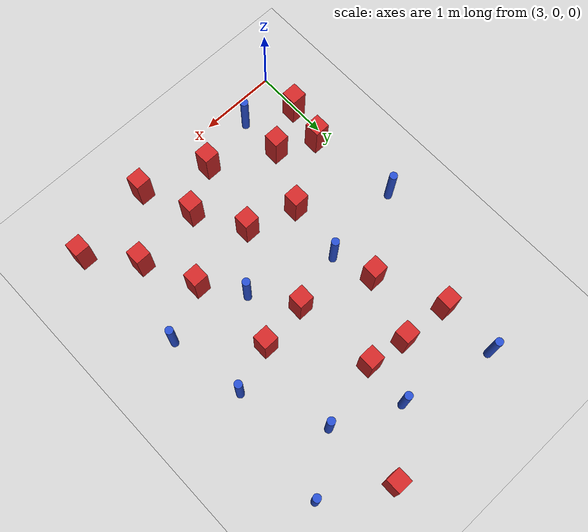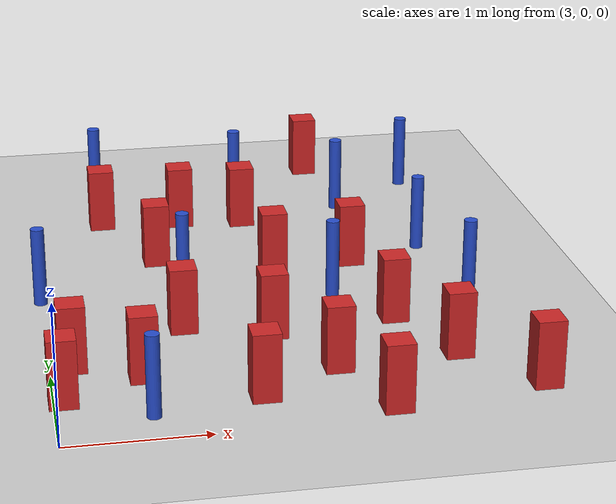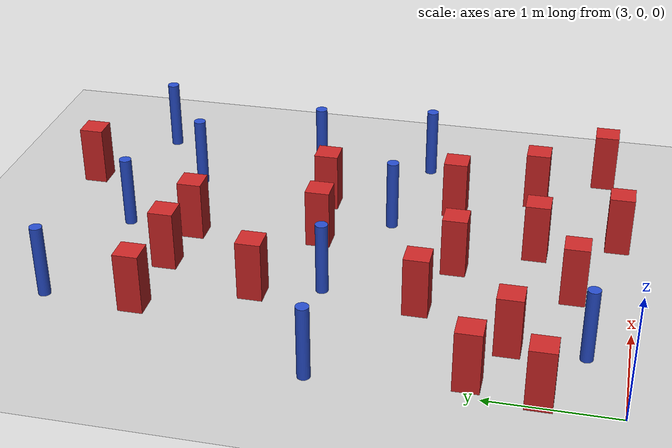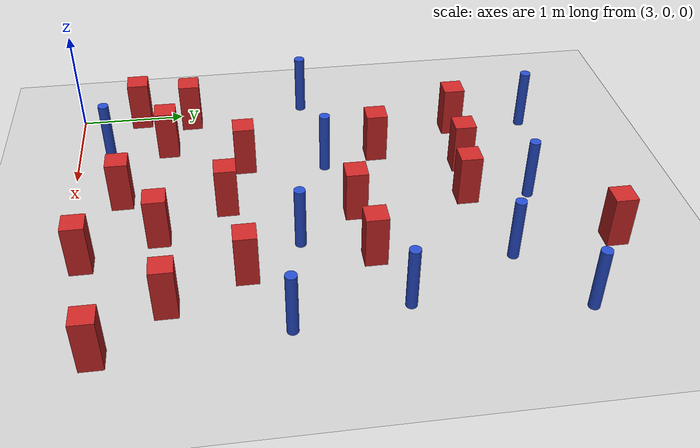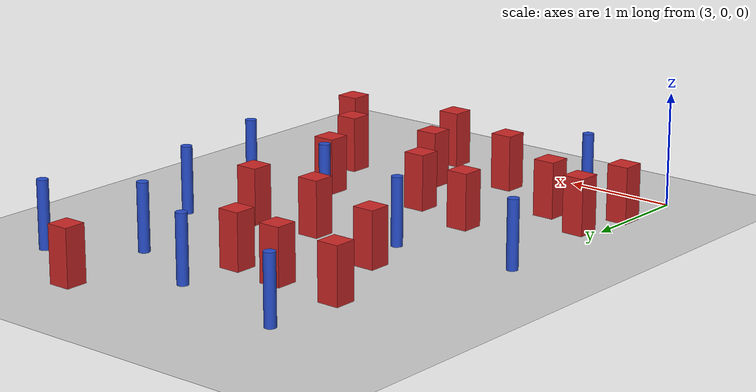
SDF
<sdf version="1.6">
 <world name="default">
  <model name="ground_plane">
   <static>1</static>
   <link name="link">
    <collision name="collision">
     <geometry><plane><normal>0 0 1</normal><size>100 100</size></plane></geometry>
     <surface><friction><ode><mu>100</mu><mu2>50</mu2></ode></friction></surface>
    </collision>
    <visual name="visual">
     <cast_shadows>0</cast_shadows>
     <geometry><plane><normal>0 0 1</normal><size>100 100</size></plane></geometry>
     <material>
      <ambient>1.0 1.0 1.0 1.0</ambient>
      <diffuse>0.8 0.8 0.8 1.0</diffuse>
      <specular>0.01 0.01 0.01 1.000000</specular>
     </material>
    </visual>
   </link>
  </model>
  <model name="pole_obstacle12">
   <static>true</static>
   <pose>6.03670000976 2.83938002078 -3.09024884793e-07 -7.19054271912e-07 -2.11315075135e-07 -1.93935509265e-07</pose>
   <link name="link">
    <pose>0 0 0.3 0 -0 0</pose>
    <inertial>
     <mass>1</mass>
     <inertia><ixx>0.145833</ixx><ixy>0</ixy><ixz>0</ixz><iyy>0.145833</iyy><iyz>0</iyz><izz>0.125</izz></inertia>
    </inertial>
    <collision name="collision">
     <geometry><cylinder><radius>0.05</radius><length>.6</length></cylinder></geometry>
    </collision>
    <visual name="visual">
     <geometry><cylinder><radius>0.05</radius><length>.6</length></cylinder></geometry>
     <material>
      <script><name>Gazebo/Blue</name><uri>file://media/materials/scripts/gazebo.material</uri></script>
     </material>
    </visual>
   </link>
  </model>
  <model name="pole_obstacle22">
   <static>true</static>
   <pose>5.17877000976 2.02896002078 -3.09024884793e-07 -7.19054271912e-07 -2.11315075122e-07 -1.93935509259e-07</pose>
   <link name="link">
    <pose>0 0 0.3 0 -0 0</pose>
    <inertial>
     <mass>1</mass>
     <inertia><ixx>0.145833</ixx><ixy>0</ixy><ixz>0</ixz><iyy>0.145833</iyy><iyz>0</iyz><izz>0.125</izz></inertia>
    </inertial>
    <collision name="collision">
     <geometry><cylinder><radius>0.05</radius><length>.6</length></cylinder></geometry>
    </collision>
    <visual name="visual">
     <geometry><cylinder><radius>0.05</radius><length>.6</length></cylinder></geometry>
     <material>
      <script><name>Gazebo/Blue</name><uri>file://media/materials/scripts/gazebo.material</uri></script>
     </material>
    </visual>
   </link>
  </model>
  <model name="pole_obstacle30">
   <static>true</static>
   <pose>3.63625000976 0.307209020783 -3.09024884793e-07 -7.19054271912e-07 -2.11315075164e-07 -1.93935509281e-07</pose>
   <link name="link">
    <pose>0 0 0.3 0 -0 0</pose>
    <inertial>
     <mass>1</mass>
     <inertia><ixx>0.145833</ixx><ixy>0</ixy><ixz>0</ixz><iyy>0.145833</iyy><iyz>0</iyz><izz>0.125</izz></inertia>
    </inertial>
    <collision name="collision">
     <geometry><cylinder><radius>0.05</radius><length>.6</length></cylinder></geometry>
    </collision>
    <visual name="visual">
     <geometry><cylinder><radius>0.05</radius><length>.6</length></cylinder></geometry>
     <material>
      <script><name>Gazebo/Blue</name><uri>file://media/materials/scripts/gazebo.material</uri></script>
     </material>
    </visual>
   </link>
  </model>
  <model name="pole_obstacle40">
   <static>true</static>
   <pose>6.19265000976 1.85910002078 -3.09024884793e-07 -7.19054271912e-07 -2.11315075123e-07 -1.93935509261e-07</pose>
   <link name="link">
    <pose>0 0 0.3 0 -0 0</pose>
    <inertial>
     <mass>1</mass>
     <inertia><ixx>0.145833</ixx><ixy>0</ixy><ixz>0</ixz><iyy>0.145833</iyy><iyz>0</iyz><izz>0.125</izz></inertia>
    </inertial>
    <collision name="collision">
     <geometry><cylinder><radius>0.05</radius><length>.6</length></cylinder></geometry>
    </collision>
    <visual name="visual">
     <geometry><cylinder><radius>0.05</radius><length>.6</length></cylinder></geometry>
     <material>
      <script><name>Gazebo/Blue</name><uri>file://media/materials/scripts/gazebo.material</uri></script>
     </material>
    </visual>
   </link>
  </model>
  <model name="square_post_obstacle38">
   <static>true</static>
   <pose>3.0631500552 0.597460974674 -4.36207812815e-07 3.75137919937e-06 9.77721102514e-07 2.47381364184e-05</pose>
   <link name="link">
    <pose>0 0 0.25 0 -0 0</pose>
    <inertial>
     <mass>100</mass>
     <inertia>
      <ixx>0.166667</ixx>
      <ixy>0</ixy>
      <ixz>0</ixz>
      <iyy>0.166667</iyy>
      <iyz>0</iyz>
      <izz>0.166667</izz>
     </inertia>
    </inertial>
    <collision name="collision"><geometry><box><size>.2 .2 .5</size></box></geometry></collision>
    <visual name="visual">
     <geometry><box><size>.2 .2 .5</size></box></geometry>
     <material>
      <script><name>Gazebo/Red</name><uri>file://media/materials/scripts/gazebo.material</uri></script>
     </material>
    </visual>
   </link>
  </model>
  <model name="pole_obstacle63">
   <static>true</static>
   <pose>5.57259000976 3.82824002078 -3.09024884793e-07 -7.19054271912e-07 -2.11315075144e-07 -1.93935509269e-07</pose>
   <link name="link">
    <pose>0 0 0.3 0 -0 0</pose>
    <inertial>
     <mass>1</mass>
     <inertia><ixx>0.145833</ixx><ixy>0</ixy><ixz>0</ixz><iyy>0.145833</iyy><iyz>0</iyz><izz>0.125</izz></inertia>
    </inertial>
    <collision name="collision">
     <geometry><cylinder><radius>0.05</radius><length>.6</length></cylinder></geometry>
    </collision>
    <visual name="visual">
     <geometry><cylinder><radius>0.05</radius><length>.6</length></cylinder></geometry>
     <material>
      <script><name>Gazebo/Blue</name><uri>file://media/materials/scripts/gazebo.material</uri></script>
     </material>
    </visual>
   </link>
  </model>
  <model name="pole_obstacle64">
   <static>true</static>
   <pose>3.00101000976 2.25320002078 -3.09024884848e-07 -7.19054271903e-07 -2.11315075185e-07 -1.93935509279e-07</pose>
   <link name="link">
    <pose>0 0 0.3 0 -0 0</pose>
    <inertial>
     <mass>1</mass>
     <inertia><ixx>0.145833</ixx><ixy>0</ixy><ixz>0</ixz><iyy>0.145833</iyy><iyz>0</iyz><izz>0.125</izz></inertia>
    </inertial>
    <collision name="collision">
     <geometry><cylinder><radius>0.05</radius><length>.6</length></cylinder></geometry>
    </collision>
    <visual name="visual">
     <geometry><cylinder><radius>0.05</radius><length>.6</length></cylinder></geometry>
     <material>
      <script><name>Gazebo/Blue</name><uri>file://media/materials/scripts/gazebo.material</uri></script>
     </material>
    </visual>
   </link>
  </model>
  <model name="square_post_obstacle55">
   <static>true</static>
   <pose>4.6139600552 1.41483997467 -4.36207812815e-07 3.75137919937e-06 9.77721102514e-07 2.47381364184e-05</pose>
   <link name="link">
    <pose>0 0 0.25 0 -0 0</pose>
    <inertial>
     <mass>100</mass>
     <inertia>
      <ixx>0.166667</ixx>
      <ixy>0</ixy>
      <ixz>0</ixz>
      <iyy>0.166667</iyy>
      <iyz>0</iyz>
      <izz>0.166667</izz>
     </inertia>
    </inertial>
    <collision name="collision"><geometry><box><size>.2 .2 .5</size></box></geometry></collision>
    <visual name="visual">
     <geometry><box><size>.2 .2 .5</size></box></geometry>
     <material>
      <script><name>Gazebo/Red</name><uri>file://media/materials/scripts/gazebo.material</uri></script>
     </material>
    </visual>
   </link>
  </model>
  <model name="pole_obstacle91">
   <static>true</static>
   <pose>3.58953000976 4.48027002078 -3.09024884793e-07 -7.19054271912e-07 -2.11315075134e-07 -1.93935509266e-07</pose>
   <link name="link">
    <pose>0 0 0.3 0 -0 0</pose>
    <inertial>
     <mass>1</mass>
     <inertia><ixx>0.145833</ixx><ixy>0</ixy><ixz>0</ixz><iyy>0.145833</iyy><iyz>0</iyz><izz>0.125</izz></inertia>
    </inertial>
    <collision name="collision">
     <geometry><cylinder><radius>0.05</radius><length>.6</length></cylinder></geometry>
    </collision>
    <visual name="visual">
     <geometry><cylinder><radius>0.05</radius><length>.6</length></cylinder></geometry>
     <material>
      <script><name>Gazebo/Blue</name><uri>file://media/materials/scripts/gazebo.material</uri></script>
     </material>
    </visual>
   </link>
  </model>
  <model name="square_post_obstacle86">
   <static>true</static>
   <pose>4.7242600552 3.62307997467 -4.36207812815e-07 3.75137919937e-06 9.77721102514e-07 2.47381364184e-05</pose>
   <link name="link">
    <pose>0 0 0.25 0 -0 0</pose>
    <inertial>
     <mass>100</mass>
     <inertia>
      <ixx>0.166667</ixx>
      <ixy>0</ixy>
      <ixz>0</ixz>
      <iyy>0.166667</iyy>
      <iyz>0</iyz>
      <izz>0.166667</izz>
     </inertia>
    </inertial>
    <collision name="collision"><geometry><box><size>.2 .2 .5</size></box></geometry></collision>
    <visual name="visual">
     <geometry><box><size>.2 .2 .5</size></box></geometry>
     <material>
      <script><name>Gazebo/Red</name><uri>file://media/materials/scripts/gazebo.material</uri></script>
     </material>
    </visual>
   </link>
  </model>
  <model name="pole_obstacle101">
   <static>true</static>
   <pose>4.76173000976 4.20979002078 -3.09024884793e-07 -7.19054271911e-07 -2.1131507516e-07 -1.93935509277e-07</pose>
   <link name="link">
    <pose>0 0 0.3 0 -0 0</pose>
    <inertial>
     <mass>1</mass>
     <inertia><ixx>0.145833</ixx><ixy>0</ixy><ixz>0</ixz><iyy>0.145833</iyy><iyz>0</iyz><izz>0.125</izz></inertia>
    </inertial>
    <collision name="collision">
     <geometry><cylinder><radius>0.05</radius><length>.6</length></cylinder></geometry>
    </collision>
    <visual name="visual">
     <geometry><cylinder><radius>0.05</radius><length>.6</length></cylinder></geometry>
     <material>
      <script><name>Gazebo/Blue</name><uri>file://media/materials/scripts/gazebo.material</uri></script>
     </material>
    </visual>
   </link>
  </model>
  <model name="square_post_obstacle98">
   <static>true</static>
   <pose>4.3959700552 0.457817974674 -4.36207812815e-07 3.75137919937e-06 9.77721102514e-07 2.47381364184e-05</pose>
   <link name="link">
    <pose>0 0 0.25 0 -0 0</pose>
    <inertial>
     <mass>100</mass>
     <inertia>
      <ixx>0.166667</ixx>
      <ixy>0</ixy>
      <ixz>0</ixz>
      <iyy>0.166667</iyy>
      <iyz>0</iyz>
      <izz>0.166667</izz>
     </inertia>
    </inertial>
    <collision name="collision"><geometry><box><size>.2 .2 .5</size></box></geometry></collision>
    <visual name="visual">
     <geometry><box><size>.2 .2 .5</size></box></geometry>
     <material>
      <script><name>Gazebo/Red</name><uri>file://media/materials/scripts/gazebo.material</uri></script>
     </material>
    </visual>
   </link>
  </model>
  <model name="square_post_obstacle99">
   <static>true</static>
   <pose>4.9650900552 0.801833974674 -4.36207812815e-07 3.75137919937e-06 9.77721102514e-07 2.47381364184e-05</pose>
   <link name="link">
    <pose>0 0 0.25 0 -0 0</pose>
    <inertial>
     <mass>100</mass>
     <inertia>
      <ixx>0.166667</ixx>
      <ixy>0</ixy>
      <ixz>0</ixz>
      <iyy>0.166667</iyy>
      <iyz>0</iyz>
      <izz>0.166667</izz>
     </inertia>
    </inertial>
    <collision name="collision"><geometry><box><size>.2 .2 .5</size></box></geometry></collision>
    <visual name="visual">
     <geometry><box><size>.2 .2 .5</size></box></geometry>
     <material>
      <script><name>Gazebo/Red</name><uri>file://media/materials/scripts/gazebo.material</uri></script>
     </material>
    </visual>
   </link>
  </model>
  <model name="pole_obstacle105">
   <static>true</static>
   <pose>4.09069000976 2.37770002078 -3.09024884793e-07 -7.19054271912e-07 -2.11315075144e-07 -1.93935509269e-07</pose>
   <link name="link">
    <pose>0 0 0.3 0 -0 0</pose>
    <inertial>
     <mass>1</mass>
     <inertia><ixx>0.145833</ixx><ixy>0</ixy><ixz>0</ixz><iyy>0.145833</iyy><iyz>0</iyz><izz>0.125</izz></inertia>
    </inertial>
    <collision name="collision">
     <geometry><cylinder><radius>0.05</radius><length>.6</length></cylinder></geometry>
    </collision>
    <visual name="visual">
     <geometry><cylinder><radius>0.05</radius><length>.6</length></cylinder></geometry>
     <material>
      <script><name>Gazebo/Blue</name><uri>file://media/materials/scripts/gazebo.material</uri></script>
     </material>
    </visual>
   </link>
  </model>
  <model name="square_post_obstacle106">
   <static>true</static>
   <pose>3.6273600552 0.877187974674 -4.36207812815e-07 3.75137919937e-06 9.77721102514e-07 2.47381364184e-05</pose>
   <link name="link">
    <pose>0 0 0.25 0 -0 0</pose>
    <inertial>
     <mass>100</mass>
     <inertia>
      <ixx>0.166667</ixx>
      <ixy>0</ixy>
      <ixz>0</ixz>
      <iyy>0.166667</iyy>
      <iyz>0</iyz>
      <izz>0.166667</izz>
     </inertia>
    </inertial>
    <collision name="collision"><geometry><box><size>.2 .2 .5</size></box></geometry></collision>
    <visual name="visual">
     <geometry><box><size>.2 .2 .5</size></box></geometry>
     <material>
      <script><name>Gazebo/Red</name><uri>file://media/materials/scripts/gazebo.material</uri></script>
     </material>
    </visual>
   </link>
  </model>
  <model name="square_post_obstacle110">
   <static>true</static>
   <pose>5.8374800552 0.875446974674 -4.36207812815e-07 3.75137919937e-06 9.77721102514e-07 2.47381364184e-05</pose>
   <link name="link">
    <pose>0 0 0.25 0 -0 0</pose>
    <inertial>
     <mass>100</mass>
     <inertia>
      <ixx>0.166667</ixx>
      <ixy>0</ixy>
      <ixz>0</ixz>
      <iyy>0.166667</iyy>
      <iyz>0</iyz>
      <izz>0.166667</izz>
     </inertia>
    </inertial>
    <collision name="collision"><geometry><box><size>.2 .2 .5</size></box></geometry></collision>
    <visual name="visual">
     <geometry><box><size>.2 .2 .5</size></box></geometry>
     <material>
      <script><name>Gazebo/Red</name><uri>file://media/materials/scripts/gazebo.material</uri></script>
     </material>
    </visual>
   </link>
  </model>
  <model name="square_post_obstacle127">
   <static>true</static>
   <pose>5.4414000552 2.63874997467 -4.36207812815e-07 3.75137919937e-06 9.77721102514e-07 2.47381364184e-05</pose>
   <link name="link">
    <pose>0 0 0.25 0 -0 0</pose>
    <inertial>
     <mass>100</mass>
     <inertia>
      <ixx>0.166667</ixx>
      <ixy>0</ixy>
      <ixz>0</ixz>
      <iyy>0.166667</iyy>
      <iyz>0</iyz>
      <izz>0.166667</izz>
     </inertia>
    </inertial>
    <collision name="collision"><geometry><box><size>.2 .2 .5</size></box></geometry></collision>
    <visual name="visual">
     <geometry><box><size>.2 .2 .5</size></box></geometry>
     <material>
      <script><name>Gazebo/Red</name><uri>file://media/materials/scripts/gazebo.material</uri></script>
     </material>
    </visual>
   </link>
  </model>
  <model name="square_post_obstacle129">
   <static>true</static>
   <pose>3.9388900552 2.89539997467 -4.36207812815e-07 3.75137919937e-06 9.77721102514e-07 2.47381364184e-05</pose>
   <link name="link">
    <pose>0 0 0.25 0 -0 0</pose>
    <inertial>
     <mass>100</mass>
     <inertia>
      <ixx>0.166667</ixx>
      <ixy>0</ixy>
      <ixz>0</ixz>
      <iyy>0.166667</iyy>
      <iyz>0</iyz>
      <izz>0.166667</izz>
     </inertia>
    </inertial>
    <collision name="collision"><geometry><box><size>.2 .2 .5</size></box></geometry></collision>
    <visual name="visual">
     <geometry><box><size>.2 .2 .5</size></box></geometry>
     <material>
      <script><name>Gazebo/Red</name><uri>file://media/materials/scripts/gazebo.material</uri></script>
     </material>
    </visual>
   </link>
  </model>
  <model name="square_post_obstacle164">
   <static>true</static>
   <pose>5.2255000552 0.151277974674 -4.36207812815e-07 3.75137919937e-06 9.77721102514e-07 2.47381364184e-05</pose>
   <link name="link">
    <pose>0 0 0.25 0 -0 0</pose>
    <inertial>
     <mass>100</mass>
     <inertia>
      <ixx>0.166667</ixx>
      <ixy>0</ixy>
      <ixz>0</ixz>
      <iyy>0.166667</iyy>
      <iyz>0</iyz>
      <izz>0.166667</izz>
     </inertia>
    </inertial>
    <collision name="collision"><geometry><box><size>.2 .2 .5</size></box></geometry></collision>
    <visual name="visual">
     <geometry><box><size>.2 .2 .5</size></box></geometry>
     <material>
      <script><name>Gazebo/Red</name><uri>file://media/materials/scripts/gazebo.material</uri></script>
     </material>
    </visual>
   </link>
  </model>
  <model name="square_post_obstacle167">
   <static>true</static>
   <pose>3.5825800552 3.73836997467 -4.36207812815e-07 3.75137919937e-06 9.77721102514e-07 2.47381364184e-05</pose>
   <link name="link">
    <pose>0 0 0.25 0 -0 0</pose>
    <inertial>
     <mass>100</mass>
     <inertia>
      <ixx>0.166667</ixx>
      <ixy>0</ixy>
      <ixz>0</ixz>
      <iyy>0.166667</iyy>
      <iyz>0</iyz>
      <izz>0.166667</izz>
     </inertia>
    </inertial>
    <collision name="collision"><geometry><box><size>.2 .2 .5</size></box></geometry></collision>
    <visual name="visual">
     <geometry><box><size>.2 .2 .5</size></box></geometry>
     <material>
      <script><name>Gazebo/Red</name><uri>file://media/materials/scripts/gazebo.material</uri></script>
     </material>
    </visual>
   </link>
  </model>
  <model name="square_post_obstacle173">
   <static>true</static>
   <pose>5.5322900552 1.54108997467 -4.36207812815e-07 3.75137919937e-06 9.77721102514e-07 2.47381364184e-05</pose>
   <link name="link">
    <pose>0 0 0.25 0 -0 0</pose>
    <inertial>
     <mass>100</mass>
     <inertia>
      <ixx>0.166667</ixx>
      <ixy>0</ixy>
      <ixz>0</ixz>
      <iyy>0.166667</iyy>
      <iyz>0</iyz>
      <izz>0.166667</izz>
     </inertia>
    </inertial>
    <collision name="collision"><geometry><box><size>.2 .2 .5</size></box></geometry></collision>
    <visual name="visual">
     <geometry><box><size>.2 .2 .5</size></box></geometry>
     <material>
      <script><name>Gazebo/Red</name><uri>file://media/materials/scripts/gazebo.material</uri></script>
     </material>
    </visual>
   </link>
  </model>
  <model name="square_post_obstacle183">
   <static>true</static>
   <pose>5.4671000552 4.77313997467 -4.36207812815e-07 3.75137919937e-06 9.77721102514e-07 2.47381364184e-05</pose>
   <link name="link">
    <pose>0 0 0.25 0 -0 0</pose>
    <inertial>
     <mass>100</mass>
     <inertia>
      <ixx>0.166667</ixx>
      <ixy>0</ixy>
      <ixz>0</ixz>
      <iyy>0.166667</iyy>
      <iyz>0</iyz>
      <izz>0.166667</izz>
     </inertia>
    </inertial>
    <collision name="collision"><geometry><box><size>.2 .2 .5</size></box></geometry></collision>
    <visual name="visual">
     <geometry><box><size>.2 .2 .5</size></box></geometry>
     <material>
      <script><name>Gazebo/Red</name><uri>file://media/materials/scripts/gazebo.material</uri></script>
     </material>
    </visual>
   </link>
  </model>
  <model name="square_post_obstacle186">
   <static>true</static>
   <pose>6.2996600552 0.319370974674 -4.36207812815e-07 3.75137919937e-06 9.77721102514e-07 2.47381364184e-05</pose>
   <link name="link">
    <pose>0 0 0.25 0 -0 0</pose>
    <inertial>
     <mass>100</mass>
     <inertia>
      <ixx>0.166667</ixx>
      <ixy>0</ixy>
      <ixz>0</ixz>
      <iyy>0.166667</iyy>
      <iyz>0</iyz>
      <izz>0.166667</izz>
     </inertia>
    </inertial>
    <collision name="collision"><geometry><box><size>.2 .2 .5</size></box></geometry></collision>
    <visual name="visual">
     <geometry><box><size>.2 .2 .5</size></box></geometry>
     <material>
      <script><name>Gazebo/Red</name><uri>file://media/materials/scripts/gazebo.material</uri></script>
     </material>
    </visual>
   </link>
  </model>
  <model name="square_post_obstacle192">
   <static>true</static>
   <pose>4.2254400552 3.69351997467 -4.36207812815e-07 3.75137919937e-06 9.77721102514e-07 2.47381364184e-05</pose>
   <link name="link">
    <pose>0 0 0.25 0 -0 0</pose>
    <inertial>
     <mass>100</mass>
     <inertia>
      <ixx>0.166667</ixx>
      <ixy>0</ixy>
      <ixz>0</ixz>
      <iyy>0.166667</iyy>
      <iyz>0</iyz>
      <izz>0.166667</izz>
     </inertia>
    </inertial>
    <collision name="collision"><geometry><box><size>.2 .2 .5</size></box></geometry></collision>
    <visual name="visual">
     <geometry><box><size>.2 .2 .5</size></box></geometry>
     <material>
      <script><name>Gazebo/Red</name><uri>file://media/materials/scripts/gazebo.material</uri></script>
     </material>
    </visual>
   </link>
  </model>
  <model name="square_post_obstacle198">
   <static>true</static>
   <pose>3.9903300552 1.61356997467 -4.36207812815e-07 3.75137919937e-06 9.77721102514e-07 2.47381364184e-05</pose>
   <link name="link">
    <pose>0 0 0.25 0 -0 0</pose>
    <inertial>
     <mass>100</mass>
     <inertia>
      <ixx>0.166667</ixx>
      <ixy>0</ixy>
      <ixz>0</ixz>
      <iyy>0.166667</iyy>
      <iyz>0</iyz>
      <izz>0.166667</izz>
     </inertia>
    </inertial>
    <collision name="collision"><geometry><box><size>.2 .2 .5</size></box></geometry></collision>
    <visual name="visual">
     <geometry><box><size>.2 .2 .5</size></box></geometry>
     <material>
      <script><name>Gazebo/Red</name><uri>file://media/materials/scripts/gazebo.material</uri></script>
     </material>
    </visual>
   </link>
  </model>
  <model name="square_post_obstacle199">
   <static>true</static>
   <pose>4.8157900552 2.56709997467 -4.36207812815e-07 3.75137919937e-06 9.77721102514e-07 2.47381364184e-05</pose>
   <link name="link">
    <pose>0 0 0.25 0 -0 0</pose>
    <inertial>
     <mass>100</mass>
     <inertia>
      <ixx>0.166667</ixx>
      <ixy>0</ixy>
      <ixz>0</ixz>
      <iyy>0.166667</iyy>
      <iyz>0</iyz>
      <izz>0.166667</izz>
     </inertia>
    </inertial>
    <collision name="collision"><geometry><box><size>.2 .2 .5</size></box></geometry></collision>
    <visual name="visual">
     <geometry><box><size>.2 .2 .5</size></box></geometry>
     <material>
      <script><name>Gazebo/Red</name><uri>file://media/materials/scripts/gazebo.material</uri></script>
     </material>
    </visual>
   </link>
  </model>
  <model name="pole_obstacle209">
   <static>true</static>
   <pose>6.24596000976 4.30289002078 -3.09024884793e-07 -7.19054271911e-07 -2.1131507516e-07 -1.93935509277e-07</pose>
   <link name="link">
    <pose>0 0 0.3 0 -0 0</pose>
    <inertial>
     <mass>1</mass>
     <inertia><ixx>0.145833</ixx><ixy>0</ixy><ixz>0</ixz><iyy>0.145833</iyy><iyz>0</iyz><izz>0.125</izz></inertia>
    </inertial>
    <collision name="collision">
     <geometry><cylinder><radius>0.05</radius><length>.6</length></cylinder></geometry>
    </collision>
    <visual name="visual">
     <geometry><cylinder><radius>0.05</radius><length>.6</length></cylinder></geometry>
     <material>
      <script><name>Gazebo/Blue</name><uri>file://media/materials/scripts/gazebo.material</uri></script>
     </material>
    </visual>
   </link>
  </model>
  <model name="square_post_obstacle228">
   <static>true</static>
   <pose>3.1576600552 1.10886997467 -4.36207812815e-07 3.75137919937e-06 9.77721102514e-07 2.47381364184e-05</pose>
   <link name="link">
    <pose>0 0 0.25 0 -0 0</pose>
    <inertial>
     <mass>100</mass>
     <inertia>
      <ixx>0.166667</ixx>
      <ixy>0</ixy>
      <ixz>0</ixz>
      <iyy>0.166667</iyy>
      <iyz>0</iyz>
      <izz>0.166667</izz>
     </inertia>
    </inertial>
    <collision name="collision"><geometry><box><size>.2 .2 .5</size></box></geometry></collision>
    <visual name="visual">
     <geometry><box><size>.2 .2 .5</size></box></geometry>
     <material>
      <script><name>Gazebo/Red</name><uri>file://media/materials/scripts/gazebo.material</uri></script>
     </material>
    </visual>
   </link>
  </model>
 </world>
</sdf>
